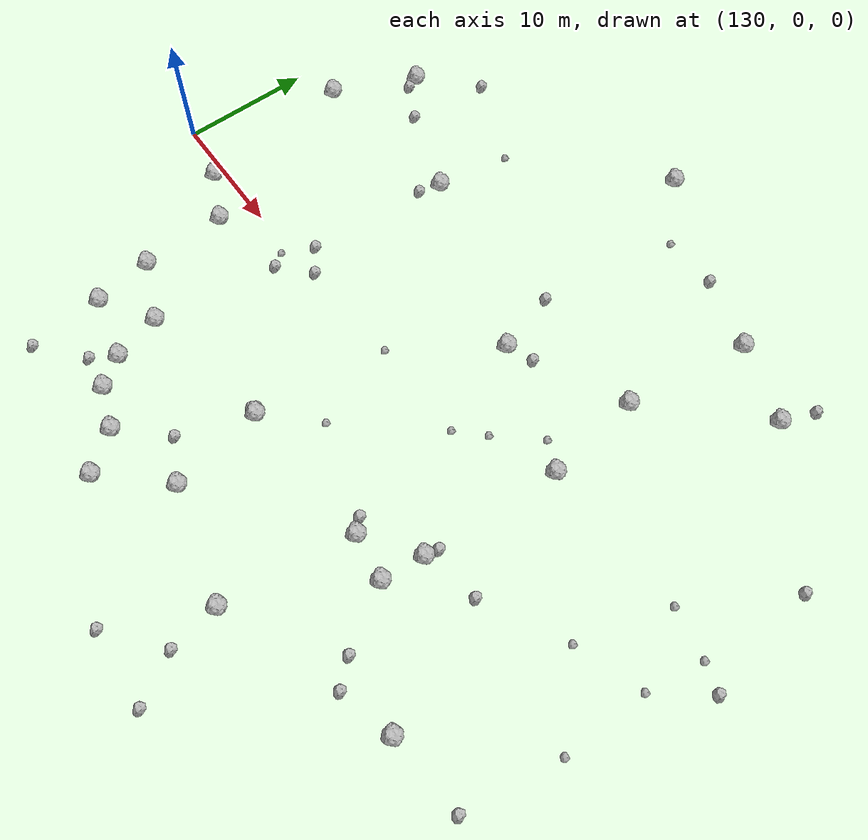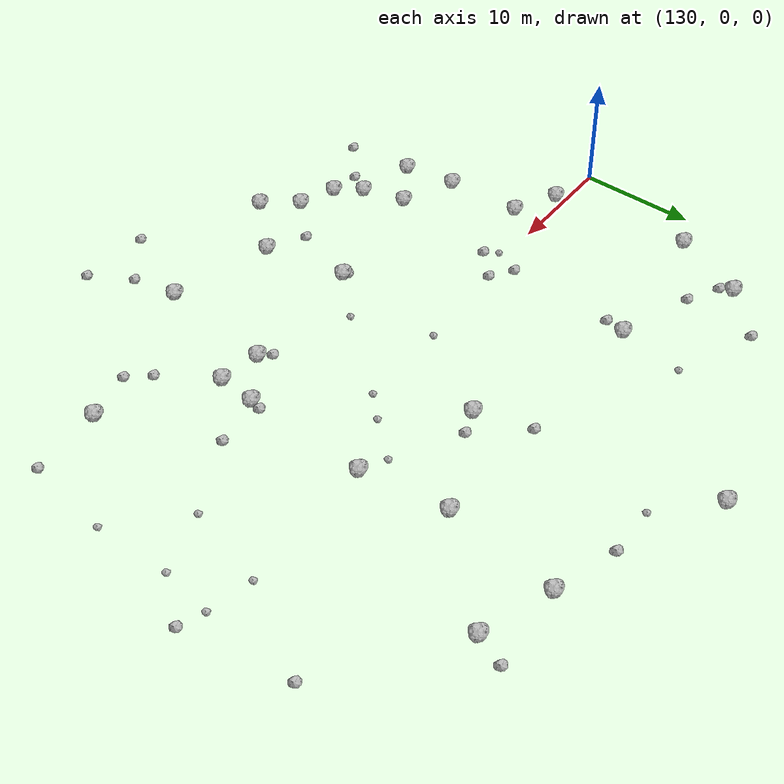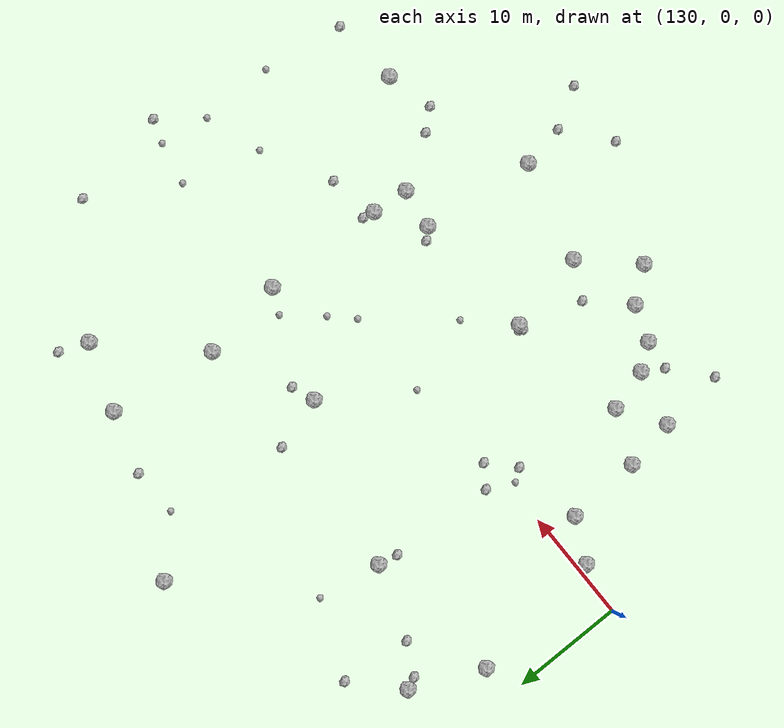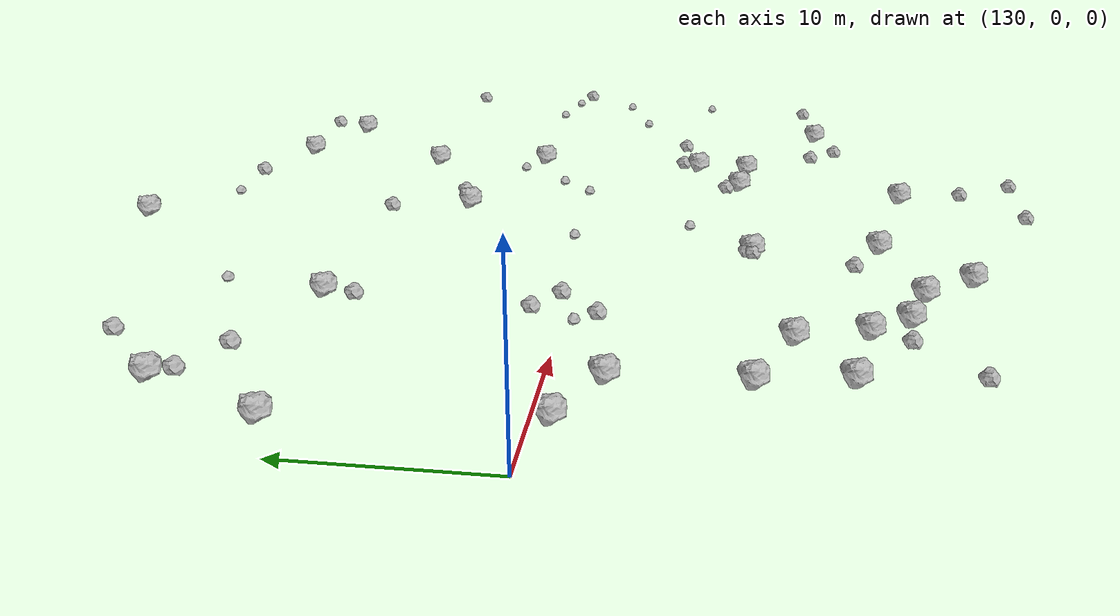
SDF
<sdf version="1.6">
 <world name="default">
  <include><uri>model://sun</uri></include>
  <model name="rock1_4_2">
   <include><uri>model://rock1</uri><pose>170.46256621604078 22.510082135252354 0.5 0 0 0</pose></include>
  </model>
  <model name="rock1_4_3">
   <include><uri>model://rock1</uri><pose>156.31873644714562 28.234712624160736 0.5 0 0 0</pose></include>
  </model>
  <model name="rock1_4_4">
   <include><uri>model://rock1</uri><pose>143.24201162746982 -11.327237554821167 0.5 0 0 0</pose></include>
  </model>
  <model name="rock1_4_5">
   <include><uri>model://rock1</uri><pose>169.12926531384483 12.664241341409216 0.5 0 0 0</pose></include>
  </model>
  <model name="rock1_4_6">
   <include><uri>model://rock1</uri><pose>151.35395944370433 -21.24755033946945 0.5 0 0 0</pose></include>
  </model>
  <model name="rock1_4_7">
   <include><uri>model://rock1</uri><pose>164.5472908128783 -19.071331985355105 0.5 0 0 0</pose></include>
  </model>
  <model name="rock1_4_8">
   <include><uri>model://rock1</uri><pose>144.3030537049869 -15.054033673247531 0.5 0 0 0</pose></include>
  </model>
  <model name="rock1_4_9">
   <include><uri>model://rock1</uri><pose>170.19828816782672 5.093831450964508 0.5 0 0 0</pose></include>
  </model>
  <model name="rock1_4_10">
   <include><uri>model://rock1</uri><pose>138.3140515264406 -2.6907870267096534 0.5 0 0 0</pose></include>
  </model>
  <model name="rock1_4_11">
   <include><uri>model://rock1</uri><pose>154.13579123025187 -9.459037143778744 0.5 0 0 0</pose></include>
  </model>
  <model name="rock1_4_12">
   <include><uri>model://rock1</uri><pose>169.75422175144087 -5.911390793190382 0.5 0 0 0</pose></include>
  </model>
  <model name="rock1_4_13">
   <include><uri>model://rock1</uri><pose>169.42971723052753 -9.258262416318775 0.5 0 0 0</pose></include>
  </model>
  <model name="rock1_4_14">
   <include><uri>model://rock1</uri><pose>138.62609194918065 -9.333341669134928 0.5 0 0 0</pose></include>
  </model>
  <model name="rock1_4_15">
   <include><uri>model://rock1</uri><pose>145.78082949067533 13.042195571652947 0.5 0 0 0</pose></include>
  </model>
  <model name="rock1_4_16">
   <include><uri>model://rock1</uri><pose>139.34700990266964 -13.893669116716723 0.5 0 0 0</pose></include>
  </model>
  <model name="rock1_4_17">
   <include><uri>model://rock1</uri><pose>160.2970988739714 8.442916888954223 0.5 0 0 0</pose></include>
  </model>
  <model name="rock1_4_18">
   <include><uri>model://rock1</uri><pose>149.10623889018632 -18.383634975108606 0.5 0 0 0</pose></include>
  </model>
  <model name="rock1_4_19">
   <include><uri>model://rock1</uri><pose>145.9033503571838 -17.211322225681542 0.5 0 0 0</pose></include>
  </model>
  <model name="rock1_4_20">
   <include><uri>model://rock1</uri><pose>135.95089246818344 17.811105172624735 0.5 0 0 0</pose></include>
  </model>
  <model name="rock1_4_21">
   <include><uri>model://rock1</uri><pose>134.52294434941533 -0.8240937778150972 0.5 0 0 0</pose></include>
  </model>
  <model name="rock1_4_22">
   <include><uri>model://rock1</uri><pose>178.17852888734717 -14.501711327100072 0.5 0 0 0</pose></include>
  </model>
  <model name="rock1_4_23">
   <include><uri>model://rock1</uri><pose>165.80240448751013 -8.756446190377861 0.5 0 0 0</pose></include>
  </model>
  <model name="rock1_4_24">
   <include><uri>model://rock1</uri><pose>176.513715990578 20.431793574932833 0.5 0 0 0</pose></include>
  </model>
  <model name="rock1_4_25">
   <include><uri>model://rock1</uri><pose>133.1152652228944 11.456990146794475 0.5 0 0 0</pose></include>
  </model>
  <model name="rock1_4_26">
   <include><uri>model://rock1</uri><pose>155.54499585375797 -16.745236140703497 0.5 0 0 0</pose></include>
  </model>
  <model name="rock2_4_0">
   <include><uri>model://rock2</uri><pose>153.75244600129292 -9.152951780696426 0.3 0 0 0</pose></include>
  </model>
  <model name="rock2_4_1">
   <include><uri>model://rock2</uri><pose>172.33024496478998 -13.844117804893486 0.3 0 0 0</pose></include>
  </model>
  <model name="rock2_4_2">
   <include><uri>model://rock2</uri><pose>188.31898472410862 3.904061611443936 0.3 0 0 0</pose></include>
  </model>
  <model name="rock2_4_3">
   <include><uri>model://rock2</uri><pose>139.8686058192702 21.617434738452545 0.3 0 0 0</pose></include>
  </model>
  <model name="rock2_4_4">
   <include><uri>model://rock2</uri><pose>186.71236278337244 13.067383420405704 0.3 0 0 0</pose></include>
  </model>
  <model name="rock2_4_5">
   <include><uri>model://rock2</uri><pose>165.22767714260056 -23.010148347756157 0.3 0 0 0</pose></include>
  </model>
  <model name="rock2_4_6">
   <include><uri>model://rock2</uri><pose>164.89342241270498 -7.860888244874374 0.3 0 0 0</pose></include>
  </model>
  <model name="rock2_4_7">
   <include><uri>model://rock2</uri><pose>143.19933619479514 -16.898317194982884 0.3 0 0 0</pose></include>
  </model>
  <model name="rock2_4_8">
   <include><uri>model://rock2</uri><pose>162.34830833975155 9.24224855294868 0.3 0 0 0</pose></include>
  </model>
  <model name="rock2_4_9">
   <include><uri>model://rock2</uri><pose>177.52715369117578 23.056277675946944 0.3 0 0 0</pose></include>
  </model>
  <model name="rock2_4_10">
   <include><uri>model://rock2</uri><pose>139.8721097080188 -19.748437794881777 0.3 0 0 0</pose></include>
  </model>
  <model name="rock2_4_11">
   <include><uri>model://rock2</uri><pose>167.3303017657658 -26.563991629558352 0.3 0 0 0</pose></include>
  </model>
  <model name="rock2_4_12">
   <include><uri>model://rock2</uri><pose>144.54782535651555 -1.6225835247327005 0.3 0 0 0</pose></include>
  </model>
  <model name="rock2_4_13">
   <include><uri>model://rock2</uri><pose>184.39071014554827 -13.965097275960307 0.3 0 0 0</pose></include>
  </model>
  <model name="rock2_4_14">
   <include><uri>model://rock2</uri><pose>161.2104960529683 -26.27309726492509 0.3 0 0 0</pose></include>
  </model>
  <model name="rock2_4_15">
   <include><uri>model://rock2</uri><pose>153.56671575359405 -9.468004508133337 0.3 0 0 0</pose></include>
  </model>
  <model name="rock2_4_16">
   <include><uri>model://rock2</uri><pose>139.17268414569523 15.319215509905007 0.3 0 0 0</pose></include>
  </model>
  <model name="rock2_4_17">
   <include><uri>model://rock2</uri><pose>169.9508565180461 -4.847006687489113 0.3 0 0 0</pose></include>
  </model>
  <model name="rock2_4_18">
   <include><uri>model://rock2</uri><pose>173.90124317284642 -15.619084736742455 0.3 0 0 0</pose></include>
  </model>
  <model name="rock2_4_19">
   <include><uri>model://rock2</uri><pose>146.79357792403619 0.5108919493697535 0.3 0 0 0</pose></include>
  </model>
  <model name="rock2_4_20">
   <include><uri>model://rock2</uri><pose>164.90885046773406 24.225805046468764 0.3 0 0 0</pose></include>
  </model>
  <model name="rock2_4_21">
   <include><uri>model://rock2</uri><pose>144.89102660782112 1.834101673055553 0.3 0 0 0</pose></include>
  </model>
  <model name="rock2_4_22">
   <include><uri>model://rock2</uri><pose>136.39677122789956 16.777336424944913 0.3 0 0 0</pose></include>
  </model>
  <model name="rock2_4_23">
   <include><uri>model://rock2</uri><pose>158.85470199174006 13.209824525122308 0.3 0 0 0</pose></include>
  </model>
  <model name="rock2_4_24">
   <include><uri>model://rock2</uri><pose>145.37881458751284 11.301847546672349 0.3 0 0 0</pose></include>
  </model>
  <model name="rock2_4_25">
   <include><uri>model://rock2</uri><pose>174.0997920031175 -4.886562558072168 0.3 0 0 0</pose></include>
  </model>
  <model name="rock2_4_26">
   <include><uri>model://rock2</uri><pose>152.25163964306049 -15.054974946307834 0.3 0 0 0</pose></include>
  </model>
  <model name="rock3_4_0">
   <include><uri>model://rock3</uri><pose>157.63531890494852 -5.785193425997676 0.2 0 0 0</pose></include>
  </model>
  <model name="rock3_4_1">
   <include><uri>model://rock3</uri><pose>185.41636176569043 0.1554279897403248 0.2 0 0 0</pose></include>
  </model>
  <model name="rock3_4_2">
   <include><uri>model://rock3</uri><pose>167.91679373396505 6.135731433322846 0.2 0 0 0</pose></include>
  </model>
  <model name="rock3_4_3">
   <include><uri>model://rock3</uri><pose>146.67511273478107 18.76602614599738 0.2 0 0 0</pose></include>
  </model>
  <model name="rock3_4_4">
   <include><uri>model://rock3</uri><pose>165.21659441511804 2.9918072518806227 0.2 0 0 0</pose></include>
  </model>
  <model name="rock3_4_5">
   <include><uri>model://rock3</uri><pose>163.34414237890283 1.0678393083871853 0.2 0 0 0</pose></include>
  </model>
  <model name="rock3_4_6">
   <include><uri>model://rock3</uri><pose>143.73995843060433 -0.5700892148866501 0.2 0 0 0</pose></include>
  </model>
  <model name="rock3_4_7">
   <include><uri>model://rock3</uri><pose>155.2875592947629 0.9734561171412572 0.2 0 0 0</pose></include>
  </model>
  <model name="rock3_4_8">
   <include><uri>model://rock3</uri><pose>182.25503311344414 5.429388637250526 0.2 0 0 0</pose></include>
  </model>
  <model name="rock3_4_9">
   <include><uri>model://rock3</uri><pose>180.2659329627649 -1.6227674585280951 0.2 0 0 0</pose></include>
  </model>
  <model name="rock3_4_10">
   <include><uri>model://rock3</uri><pose>185.51018939029996 -6.546927223822987 0.2 0 0 0</pose></include>
  </model>
  <model name="rock3_4_11">
   <include><uri>model://rock3</uri><pose>186.13023677576086 4.609782409972873 0.2 0 0 0</pose></include>
  </model>
  <model name="rock3_4_12">
   <include><uri>model://rock3</uri><pose>160.5935170092076 24.083384373314324 0.2 0 0 0</pose></include>
  </model>
 </world>
</sdf>
